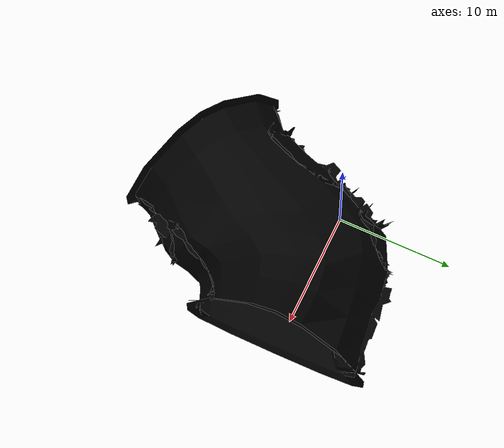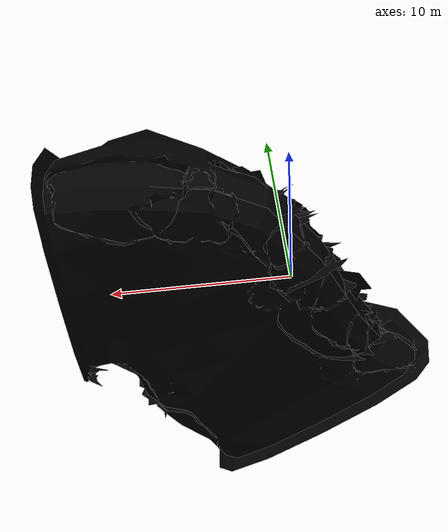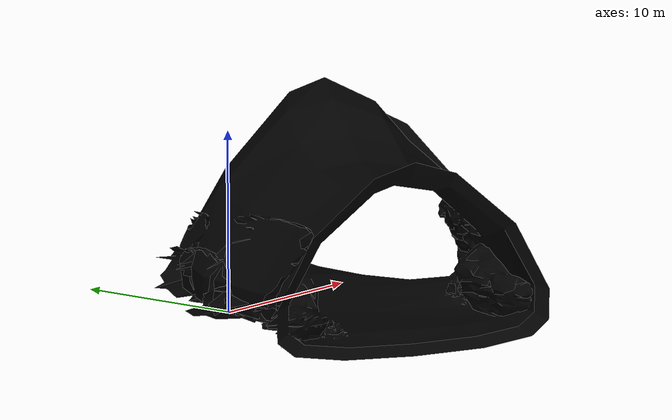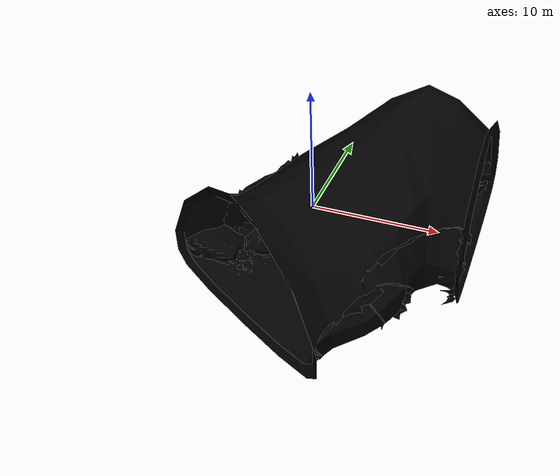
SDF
<sdf version="1.6">
  <model name="Cave Corner 30F D Lights Type B">
    <include>
      <name>cave_corner_30F_d</name>
      <uri>model://Cave Corner 30F D Type B</uri>
    </include>
    <static>true</static>
    <link name="lights">
      <light name="spot_light1" type="spot">
        <pose>6.0 0 3.5 0 0 0</pose>
        <diffuse>0 0 0 1</diffuse>
        <specular>0 0 0 1</specular>
        <attenuation>
          <range>20</range>
          <linear>0.2</linear>
          <constant>0.7</constant>
          <quadratic>0.02</quadratic>
        </attenuation>
        <spot>
          <inner_angle>2.0</inner_angle>
          <outer_angle>3.1</outer_angle>
          <falloff>1.0</falloff>
        </spot>
        <cast_shadows>false</cast_shadows>
      </light>

      <light name="spot_light2" type="spot">
        <pose>1.25 -6 4.5 0 0 0</pose>
        <diffuse>0 0 0 1</diffuse>
        <specular>0 0 0 1</specular>
        <attenuation>
          <range>20</range>
          <linear>0.2</linear>
          <constant>0.7</constant>
          <quadratic>0.02</quadratic>
        </attenuation>
        <spot>
          <inner_angle>2.0</inner_angle>
          <outer_angle>3.1</outer_angle>
          <falloff>1.0</falloff>
        </spot>
        <cast_shadows>false</cast_shadows>
      </light>
    </link>
  </model>
</sdf>

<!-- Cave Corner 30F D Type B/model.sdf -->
<sdf version="1.6">
  <model name="Cave Corner 30F D Type B">
    <static>true</static>
    <link name="base_link">
      <collision name="collision">
        <pose>0 0 0 0 0 0</pose>
        <geometry>
          <mesh>
            <uri>model://Cave Corner 30F D Type B/meshes/corner30degflipped.dae</uri>
            <scale>1.0 1.0 1.0</scale>
          </mesh>
        </geometry>
      </collision>
      <visual name="CaveWall_visual">
        <geometry>
          <mesh>
            <submesh>
              <name>CaveWall</name>
              <center>false</center>
            </submesh>
            <uri>model://Cave Corner 30F D Type B/meshes/corner30degflipped.dae</uri>
            <scale>1.0 1.0 1.0</scale>
          </mesh>
        </geometry>
        <material>
          <diffuse>0 0 0 1</diffuse>
          <specular>0 0 0 1</specular>
          <pbr>
            <metal>
              <albedo_map>model://Cave Corner 30F D Type B/materials/textures/CaveWall_Albedo.png</albedo_map>
              <normal_map>model://Cave Corner 30F D Type B/materials/textures/CaveWall_Normal.png</normal_map>
              <roughness_map>model://Cave Corner 30F D Type B/materials/textures/CaveWall_Roughness.png</roughness_map>
            </metal>
          </pbr>

          <script>
            <uri>model://Cave Corner 30F D Type B/materials/scripts/</uri>
            <uri>model://Cave Corner 30F D Type B/materials/textures/</uri>
            <name>CaveTile/CaveWall_Diffuse</name>
          </script>
        </material>
      </visual>
      <visual name="StriatedRock_visual">
        <geometry>
          <mesh>
            <uri>model://Cave Corner 30F D Type B/meshes/corner30degflipped.dae</uri>
            <submesh>
              <name>StriatedRock</name>
              <center>false</center>
            </submesh>
            <scale>1.0 1.0 1.0</scale>
          </mesh>
        </geometry>
        <material>
          <diffuse>0 0 0 1</diffuse>
          <specular>0 0 0 1</specular>
          <pbr>
            <metal>
              <albedo_map>model://Cave Corner 30F D Type B/materials/textures/StriatedRock_Albedo.png</albedo_map>
              <normal_map>model://Cave Corner 30F D Type B/materials/textures/StriatedRock_Normal.png</normal_map>
              <roughness_map>model://Cave Corner 30F D Type B/materials/textures/StriatedRock_Roughness.png</roughness_map>
            </metal>
          </pbr>

          <script>
            <uri>model://Cave Corner 30F D Type B/materials/scripts/</uri>
            <uri>model://Cave Corner 30F D Type B/materials/textures/</uri>
            <name>CaveTile/StriatedRock_Diffuse</name>
          </script>
        </material>
      </visual>
      <visual name="RockPile_visual">
        <geometry>
          <mesh>
            <uri>model://Cave Corner 30F D Type B/meshes/corner30degflipped.dae</uri>
            <submesh>
              <name>RockPile</name>
              <center>false</center>
            </submesh>
            <scale>1.0 1.0 1.0</scale>
          </mesh>
        </geometry>
        <material>
          <diffuse>0 0 0 1</diffuse>
          <specular>0 0 0 1</specular>
          <pbr>
            <metal>
              <albedo_map>model://Cave Corner 30F D Type B/materials/textures/RockPile_Albedo.png</albedo_map>
              <normal_map>model://Cave Corner 30F D Type B/materials/textures/RockPile_Normal.png</normal_map>
              <roughness_map>model://Cave Corner 30F D Type B/materials/textures/RockPile_Roughness.png</roughness_map>
            </metal>
          </pbr>

          <script>
            <uri>model://Cave Corner 30F D Type B/materials/scripts/</uri>
            <uri>model://Cave Corner 30F D Type B/materials/textures/</uri>
            <name>CaveTile/RockPile_Diffuse</name>
          </script>
        </material>
      </visual>

    </link>
  </model>
</sdf>
